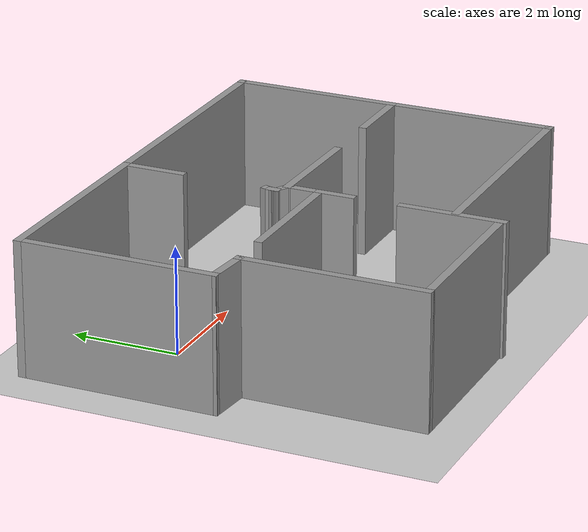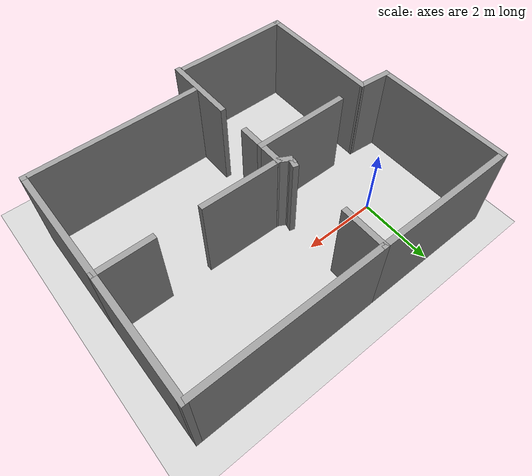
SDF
<sdf version="1.6">
 <world name="default">
  <light name="sun" type="directional">
   <pose>0 0 10 0 -0 0</pose>
   <diffuse>0.8 0.8 0.8 1</diffuse>
   <specular>0.2 0.2 0.2 1</specular>
   <attenuation>
    <range>1000</range>
    <constant>0.9</constant>
    <linear>0.01</linear>
    <quadratic>0.001</quadratic>
   </attenuation>
   <direction>-0.5 0.1 -0.9</direction>
  </light>
  <model name="ground_plane">
   <static>1</static>
   <link name="link">
    <collision name="collision">
     <geometry><plane><normal>0 0 1</normal><size>100 100</size></plane></geometry>
     <surface>
      <contact><collide_bitmask>65535</collide_bitmask></contact>
      <friction><ode><mu>100</mu><mu2>50</mu2></ode></friction>
     </surface>
    </collision>
    <visual name="visual">
     <cast_shadows>0</cast_shadows>
     <geometry><plane><normal>0 0 1</normal><size>100 100</size></plane></geometry>
     <material>
      <script><uri>file://media/materials/scripts/gazebo.material</uri><name>Gazebo/Grey</name></script>
     </material>
    </visual>
   </link>
  </model>
  <gravity>0 0 -9.8</gravity>
  <magnetic_field>6e-06 2.3e-05 -4.2e-05</magnetic_field>
  <atmosphere type="adiabatic"/>
  <physics name="default_physics" default="0" type="ode">
   <max_step_size>0.001</max_step_size>
   <real_time_factor>1</real_time_factor>
   <real_time_update_rate>1000</real_time_update_rate>
  </physics>
  <scene><ambient>0.4 0.4 0.4 1</ambient><background>0.7 0.7 0.7 1</background><shadows>1</shadows></scene>
  <spherical_coordinates>
   <surface_model>EARTH_WGS84</surface_model>
   <latitude_deg>0</latitude_deg>
   <longitude_deg>0</longitude_deg>
   <elevation>0</elevation>
   <heading_deg>0</heading_deg>
  </spherical_coordinates>
  <model name="model_v1">
   <pose>2.49473 -1.55769 0 0 -0 0</pose>
   <link name="Wall_23">
    <collision name="Wall_23_Collision">
     <geometry><box><size>2.6 0.15 2.5</size></box></geometry>
     <pose>0 0 1.25 0 -0 0</pose>
    </collision>
    <visual name="Wall_23_Visual">
     <pose>0 0 1.25 0 -0 0</pose>
     <geometry><box><size>2.6 0.15 2.5</size></box></geometry>
     <material>
      <script><uri>file://media/materials/scripts/gazebo.material</uri><name>Gazebo/Grey</name></script>
      <ambient>1 1 1 1</ambient>
     </material>
     <meta><layer>0</layer></meta>
    </visual>
    <pose>-1.51887 -0.135 0 0 -0 0</pose>
   </link>
   <link name="Wall_26">
    <collision name="Wall_26_Collision">
     <geometry><box><size>0.75 0.15 2.5</size></box></geometry>
     <pose>0 0 1.25 0 -0 0</pose>
    </collision>
    <visual name="Wall_26_Visual">
     <pose>0 0 1.25 0 -0 0</pose>
     <geometry><box><size>0.75 0.15 2.5</size></box></geometry>
     <material>
      <script><uri>file://media/materials/scripts/gazebo.material</uri><name>Gazebo/Grey</name></script>
      <ambient>1 1 1 1</ambient>
     </material>
     <meta><layer>0</layer></meta>
    </visual>
    <pose>-0.293874 -0.435 0 0 -0 -1.5708</pose>
   </link>
   <link name="Wall_31">
    <collision name="Wall_31_Collision">
     <geometry><box><size>3.25 0.15 2.5</size></box></geometry>
     <pose>0 0 1.25 0 -0 0</pose>
    </collision>
    <visual name="Wall_31_Visual">
     <pose>0 0 1.25 0 -0 0</pose>
     <geometry><box><size>3.25 0.15 2.5</size></box></geometry>
     <material>
      <script><uri>file://media/materials/scripts/gazebo.material</uri><name>Gazebo/Grey</name></script>
      <ambient>1 1 1 1</ambient>
     </material>
     <meta><layer>0</layer></meta>
    </visual>
    <pose>-1.99687 -3.485 0 0 -0 0</pose>
   </link>
   <link name="Wall_36">
    <collision name="Wall_36_Collision">
     <geometry><box><size>2 0.15 2.5</size></box></geometry>
     <pose>0 0 1.25 0 -0 0</pose>
    </collision>
    <visual name="Wall_36_Visual">
     <pose>0 0 1.25 0 -0 0</pose>
     <geometry><box><size>2 0.15 2.5</size></box></geometry>
     <material>
      <script><uri>file://media/materials/scripts/gazebo.material</uri><name>Gazebo/Grey</name></script>
      <ambient>1 1 1 1</ambient>
     </material>
     <meta><layer>0</layer></meta>
    </visual>
    <pose>-0.293874 -2.61 0 0 -0 -1.5708</pose>
   </link>
   <link name="Wall_38">
    <collision name="Wall_38_Collision">
     <geometry><box><size>4.75 0.15 2.5</size></box></geometry>
     <pose>0 0 1.25 0 -0 0</pose>
    </collision>
    <visual name="Wall_38_Visual">
     <pose>0 0 1.25 0 -0 0</pose>
     <geometry><box><size>4.75 0.15 2.5</size></box></geometry>
     <material>
      <script><uri>file://media/materials/scripts/gazebo.material</uri><name>Gazebo/Grey</name></script>
      <ambient>1 1 1 1</ambient>
     </material>
     <meta><layer>0</layer></meta>
    </visual>
    <pose>2.05313 -2.665 0 0 -0 0</pose>
   </link>
   <link name="Wall_39">
    <collision name="Wall_39_Collision">
     <geometry><box><size>3.25 0.15 2.5</size></box></geometry>
     <pose>0 0 1.25 0 -0 0</pose>
    </collision>
    <visual name="Wall_39_Visual">
     <pose>0 0 1.25 0 -0 0</pose>
     <geometry><box><size>3.25 0.15 2.5</size></box></geometry>
     <material>
      <script><uri>file://media/materials/scripts/gazebo.material</uri><name>Gazebo/Grey</name></script>
      <ambient>1 1 1 1</ambient>
     </material>
     <meta><layer>0</layer></meta>
    </visual>
    <pose>4.35313 -1.115 0 0 -0 1.5708</pose>
   </link>
   <link name="Wall_40">
    <collision name="Wall_40_Collision">
     <geometry><box><size>1.5 0.15 2.5</size></box></geometry>
     <pose>0 0 1.25 0 -0 0</pose>
    </collision>
    <visual name="Wall_40_Visual">
     <pose>0 0 1.25 0 -0 0</pose>
     <geometry><box><size>1.5 0.15 2.5</size></box></geometry>
     <material>
      <script><uri>file://media/materials/scripts/gazebo.material</uri><name>Gazebo/Grey</name></script>
      <ambient>1 1 1 1</ambient>
     </material>
     <meta><layer>0</layer></meta>
    </visual>
    <pose>3.67813 0.435 0 0 -0 3.14159</pose>
   </link>
   <link name="Wall_42">
    <collision name="Wall_42_Collision">
     <geometry><box><size>0.75 0.15 2.5</size></box></geometry>
     <pose>0 0 1.25 0 -0 0</pose>
    </collision>
    <visual name="Wall_42_Visual">
     <pose>0 0 1.25 0 -0 0</pose>
     <geometry><box><size>0.75 0.15 2.5</size></box></geometry>
     <material>
      <script><uri>file://media/materials/scripts/gazebo.material</uri><name>Gazebo/Grey</name></script>
      <ambient>1 1 1 1</ambient>
     </material>
     <meta><layer>0</layer></meta>
    </visual>
    <pose>-0.293874 0.165 0 0 -0 1.5708</pose>
   </link>
   <link name="Wall_46">
    <collision name="Wall_46_Collision">
     <geometry><box><size>2.19722 0.15 2.5</size></box></geometry>
     <pose>0 0 1.25 0 -0 0</pose>
    </collision>
    <visual name="Wall_46_Visual">
     <pose>0 0 1.25 0 -0 0</pose>
     <geometry><box><size>2.19722 0.15 2.5</size></box></geometry>
     <material>
      <script><uri>file://media/materials/scripts/gazebo.material</uri><name>Gazebo/Grey</name></script>
      <ambient>1 1 1 1</ambient>
     </material>
     <meta><layer>0</layer></meta>
    </visual>
    <pose>0.729626 0.45 0 0 -0 -0.014655</pose>
   </link>
   <link name="Wall_48">
    <collision name="Wall_48_Collision">
     <geometry><box><size>3.25 0.15 2.5</size></box></geometry>
     <pose>0 0 1.25 0 -0 0</pose>
    </collision>
    <visual name="Wall_48_Visual">
     <pose>0 0 1.25 0 -0 0</pose>
     <geometry><box><size>3.25 0.15 2.5</size></box></geometry>
     <material>
      <script><uri>file://media/materials/scripts/gazebo.material</uri><name>Gazebo/Grey</name></script>
      <ambient>1 1 1 1</ambient>
     </material>
     <meta><layer>0</layer></meta>
    </visual>
    <pose>4.35313 1.985 0 0 -0 1.5708</pose>
   </link>
   <link name="Wall_49">
    <collision name="Wall_49_Collision">
     <geometry><box><size>5 0.15 2.5</size></box></geometry>
     <pose>0 0 1.25 0 -0 0</pose>
    </collision>
    <visual name="Wall_49_Visual">
     <pose>0 0 1.25 0 -0 0</pose>
     <geometry><box><size>5 0.15 2.5</size></box></geometry>
     <material>
      <script><uri>file://media/materials/scripts/gazebo.material</uri><name>Gazebo/Grey</name></script>
      <ambient>1 1 1 1</ambient>
     </material>
     <meta><layer>0</layer></meta>
    </visual>
    <pose>1.92813 3.535 0 0 -0 3.14159</pose>
   </link>
   <link name="Wall_50">
    <collision name="Wall_50_Collision">
     <geometry><box><size>1.25 0.15 2.5</size></box></geometry>
     <pose>0 0 1.25 0 -0 0</pose>
    </collision>
    <visual name="Wall_50_Visual">
     <pose>0 0 1.25 0 -0 0</pose>
     <geometry><box><size>1.25 0.15 2.5</size></box></geometry>
     <material>
      <script><uri>file://media/materials/scripts/gazebo.material</uri><name>Gazebo/Grey</name></script>
      <ambient>1 1 1 1</ambient>
     </material>
     <meta><layer>0</layer></meta>
    </visual>
    <pose>-0.496874 2.985 0 0 -0 -1.5708</pose>
   </link>
   <link name="Wall_53">
    <collision name="Wall_53_Collision">
     <geometry><box><size>0.25 0.15 2.5</size></box></geometry>
     <pose>0 0 1.25 0 -0 0</pose>
    </collision>
    <visual name="Wall_53_Visual">
     <pose>0 0 1.25 0 -0 0</pose>
     <geometry><box><size>0.25 0.15 2.5</size></box></geometry>
     <material>
      <script><uri>file://media/materials/scripts/gazebo.material</uri><name>Gazebo/Grey</name></script>
      <ambient>1 1 1 1</ambient>
     </material>
     <meta><layer>0</layer></meta>
    </visual>
    <pose>-0.509815 0.736704 0 0 -0 -1.8326</pose>
   </link>
   <link name="Wall_54">
    <collision name="Wall_54_Collision">
     <geometry><box><size>0.25 0.15 2.5</size></box></geometry>
     <pose>0 0 1.25 0 -0 0</pose>
    </collision>
    <visual name="Wall_54_Visual">
     <pose>0 0 1.25 0 -0 0</pose>
     <geometry><box><size>0.25 0.15 2.5</size></box></geometry>
     <material>
      <script><uri>file://media/materials/scripts/gazebo.material</uri><name>Gazebo/Grey</name></script>
      <ambient>1 1 1 1</ambient>
     </material>
     <meta><layer>0</layer></meta>
    </visual>
    <pose>-0.522756 0.638407 0 0 -0 -1.5708</pose>
   </link>
   <link name="Wall_55">
    <collision name="Wall_55_Collision">
     <geometry><box><size>0.410031 0.15 2.5</size></box></geometry>
     <pose>0 0 1.25 0 -0 0</pose>
    </collision>
    <visual name="Wall_55_Visual">
     <pose>0 0 1.25 0 -0 0</pose>
     <geometry><box><size>0.410031 0.15 2.5</size></box></geometry>
     <material>
      <script><uri>file://media/materials/scripts/gazebo.material</uri><name>Gazebo/Grey</name></script>
      <ambient>1 1 1 1</ambient>
     </material>
     <meta><layer>0</layer></meta>
    </visual>
    <pose>-0.408315 0.526704 0 0 -0 -0.494494</pose>
   </link>
   <link name="Wall_57">
    <collision name="Wall_57_Collision">
     <geometry><box><size>4 0.15 2.5</size></box></geometry>
     <pose>0 0 1.25 0 -0 0</pose>
    </collision>
    <visual name="Wall_57_Visual">
     <pose>0 0 1.25 0 -0 0</pose>
     <geometry><box><size>4 0.15 2.5</size></box></geometry>
     <material>
      <script><uri>file://media/materials/scripts/gazebo.material</uri><name>Gazebo/Grey</name></script>
      <ambient>1 1 1 1</ambient>
     </material>
     <meta><layer>0</layer></meta>
    </visual>
    <pose>-2.42187 3.535 0 0 -0 3.14159</pose>
   </link>
   <link name="Wall_58">
    <collision name="Wall_58_Collision">
     <geometry><box><size>3.75 0.15 2.5</size></box></geometry>
     <pose>0 0 1.25 0 -0 0</pose>
    </collision>
    <visual name="Wall_58_Visual">
     <pose>0 0 1.25 0 -0 0</pose>
     <geometry><box><size>3.75 0.15 2.5</size></box></geometry>
     <material>
      <script><uri>file://media/materials/scripts/gazebo.material</uri><name>Gazebo/Grey</name></script>
      <ambient>1 1 1 1</ambient>
     </material>
     <meta><layer>0</layer></meta>
    </visual>
    <pose>-4.34687 1.735 0 0 -0 -1.5708</pose>
   </link>
   <link name="Wall_59">
    <collision name="Wall_59_Collision">
     <geometry><box><size>0.953057 0.15 2.5</size></box></geometry>
     <pose>0 0 1.25 0 -0 0</pose>
    </collision>
    <visual name="Wall_59_Visual">
     <pose>0 0 1.25 0 -0 0</pose>
     <geometry><box><size>0.953057 0.15 2.5</size></box></geometry>
     <material>
      <script><uri>file://media/materials/scripts/gazebo.material</uri><name>Gazebo/Grey</name></script>
      <ambient>1 1 1 1</ambient>
     </material>
     <meta><layer>0</layer></meta>
    </visual>
    <pose>-3.94687 -0.1 0 0 -0 -0.087278</pose>
   </link>
   <link name="Wall_7">
    <collision name="Wall_7_Collision">
     <geometry><box><size>3.5 0.15 2.5</size></box></geometry>
     <pose>0 0 1.25 0 -0 0</pose>
    </collision>
    <visual name="Wall_7_Visual">
     <pose>0 0 1.25 0 -0 0</pose>
     <geometry><box><size>3.5 0.15 2.5</size></box></geometry>
     <material>
      <script><uri>file://media/materials/scripts/gazebo.material</uri><name>Gazebo/Grey</name></script>
      <ambient>1 1 1 1</ambient>
     </material>
     <meta><layer>0</layer></meta>
    </visual>
    <pose>-3.54687 -1.81 0 0 -0 -1.5708</pose>
   </link>
   <static>1</static>
  </model>
 </world>
</sdf>
